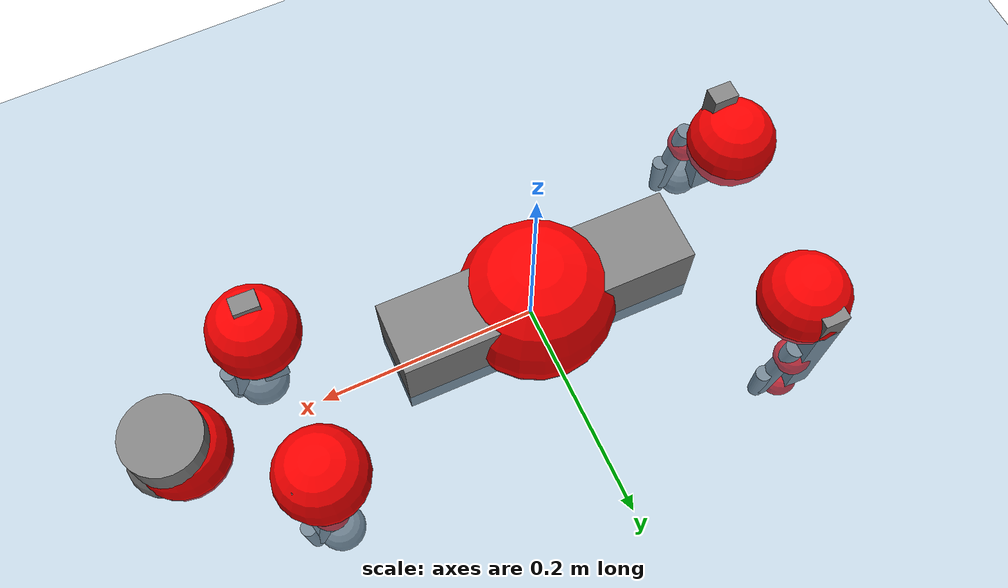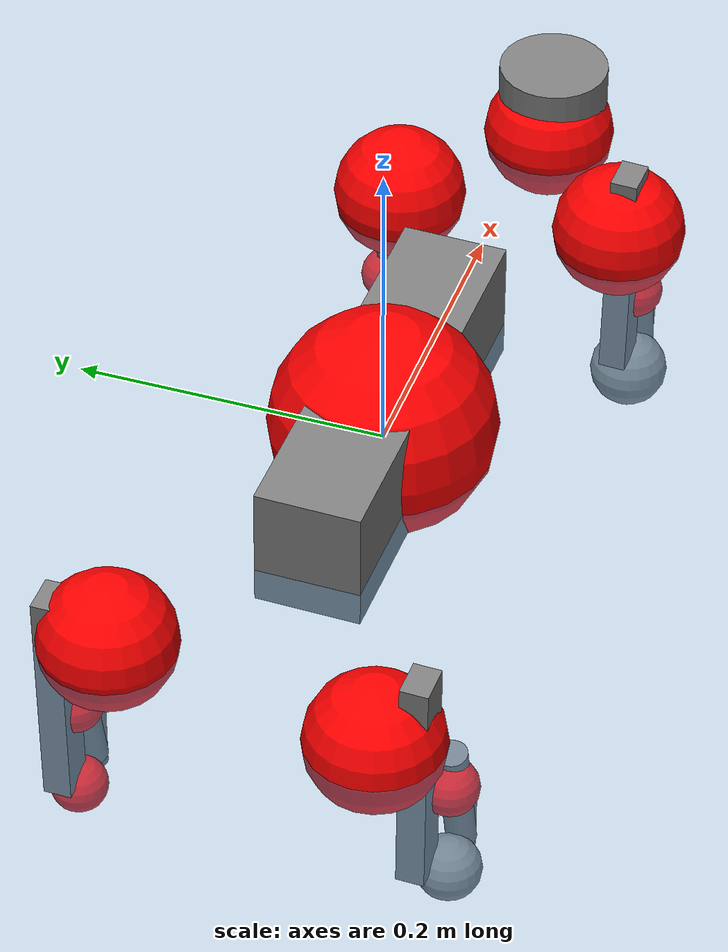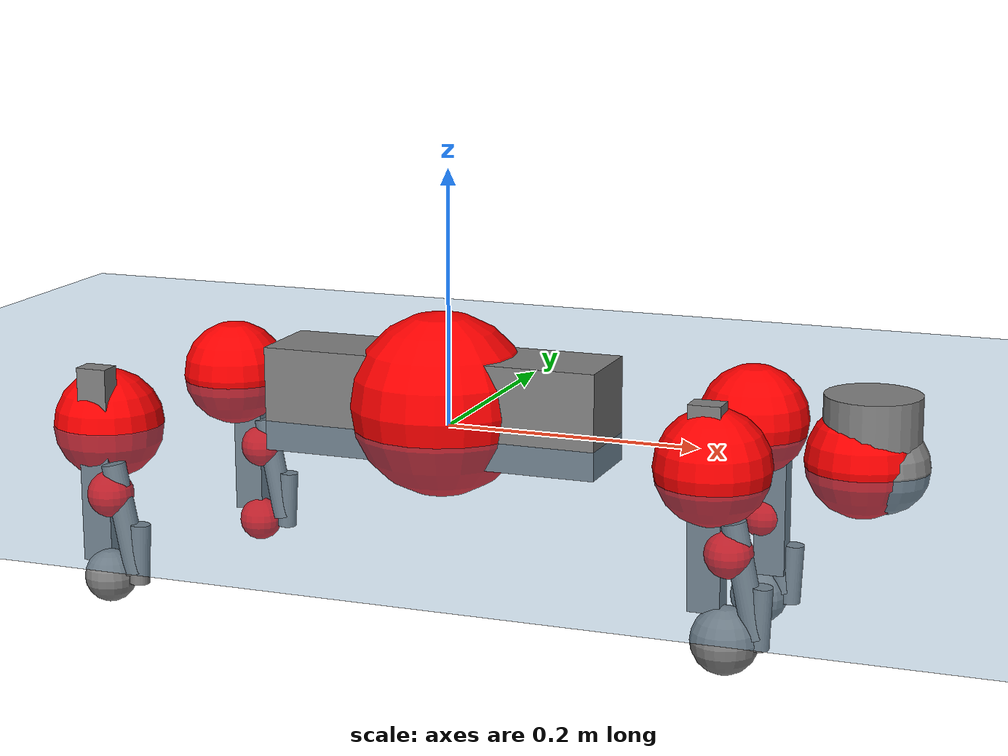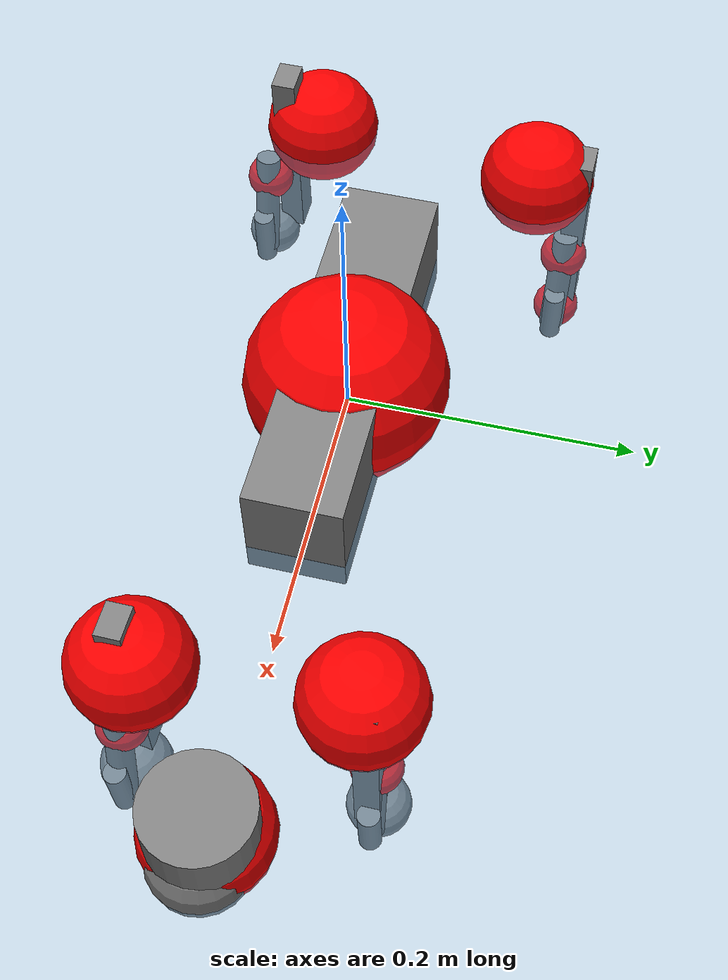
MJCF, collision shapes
<mujoco model="go2">
  <compiler angle="radian" assetdir="assets" balanceinertia="true" inertiafromgeom="false"/>

  <option timestep="0.005" density="1.2" viscosity="2e-05"/>

  <size nkey="1"/>

  <visual>
    <quality shadowsize="8192"/>
    <map shadowclip="0.5"/>
  </visual>

  <default>
    <default class="/">
      <geom contype="0" conaffinity="0" group="1" solref="-1000 -80"/>
      <site size="0.01 0.005 0.005" group="5"/>
      <general forcelimited="true" biastype="affine" gainprm="20" biasprm="0 -20 -0.5"/>
      <default class="go2">
        <joint armature="0.01" damping="0.01" frictionloss="0.2"/>
        <geom condim="1" margin="0.001"/>
        <default class="visual">
          <geom type="mesh" group="2"/>
        </default>
        <default class="collision">
          <geom group="3"/>
          <default class="foot">
            <geom size="0.022 0 0" condim="6" priority="1" friction="0.8 0.02 0.01" solimp="0.015 1 0.022"/>
          </default>
        </default>
        <default class="reward_collision_sphere">
          <geom group="5" rgba="1 0 0 1"/>
        </default>
      </default>
    </default>
  </default>

  <asset>
    <texture type="skybox" colorspace="auto" name="//unnamed_texture_0" builtin="gradient" rgb1="0.95 0.95 0.95" rgb2="0.95 0.95 0.95" width="100" height="600"/>
    <texture type="2d" colorspace="auto" name="texplane" builtin="checker" rgb1="0.345 0.575 0.748" rgb2="0.345 0.575 0.748" markrgb="1 1 1" width="512" height="512"/>
    <material name="MatPlane" class="/" texture="texplane" texuniform="true" texrepeat="2 2" specular="0.9"/>
    <material name="metal" class="/" rgba="0.9 0.95 0.95 1"/>
    <material name="black" class="/" rgba="0 0 0 1"/>
    <material name="white" class="/"/>
    <material name="gray" class="/" rgba="0.671705 0.692426 0.77427 1"/>
    <mesh name="base_0" class="/" file="base_0.obj"/>
    <mesh name="base_1" class="/" file="base_1.obj"/>
    <mesh name="base_2" class="/" file="base_2.obj"/>
    <mesh name="base_3" class="/" file="base_3.obj"/>
    <mesh name="base_4" class="/" file="base_4.obj"/>
    <mesh name="hip_0" class="/" file="hip_0.obj"/>
    <mesh name="hip_1" class="/" file="hip_1.obj"/>
    <mesh name="thigh_0" class="/" file="thigh_0.obj"/>
    <mesh name="thigh_1" class="/" file="thigh_1.obj"/>
    <mesh name="thigh_mirror_0" class="/" file="thigh_mirror_0.obj"/>
    <mesh name="thigh_mirror_1" class="/" file="thigh_mirror_1.obj"/>
    <mesh name="calf_0" class="/" file="calf_0.obj"/>
    <mesh name="calf_1" class="/" file="calf_1.obj"/>
    <mesh name="calf_mirror_0" class="/" file="calf_mirror_0.obj"/>
    <mesh name="calf_mirror_1" class="/" file="calf_mirror_1.obj"/>
    <mesh name="foot" class="/" file="foot.obj"/>
  </asset>

  <worldbody>
    <geom name="floor" class="/" size="100 100 0.125" type="plane" group="0" material="MatPlane"/>
    <light name="toplight_shadow" class="/" pos="0 0 5" dir="0.0990148 0.0990148 -0.990148" type="directional" ambient="0.04 0.04 0.04" diffuse="0.55 0.55 0.55" specular="0.12 0.12 0.12"/>
    <light name="toplight_fill" class="/" pos="0 0 5" dir="0.0990148 0.0990148 -0.990148" type="directional" castshadow="false" ambient="0.04 0.04 0.04" diffuse="0.3 0.3 0.3" specular="0.08 0.08 0.08"/>
    <body name="trunk" childclass="go2" pos="-0.00522761 -0.00178806 0.0176425" quat="0.999965 0.00364649 -0.00173006 -0.00726474">
      <inertial pos="0.0204984 -0.0147802 0.00252471" quat="-0.0614089 0.718403 -0.0542955 0.69078" mass="2.31598" diaginertia="0.199831 0.0111776 4.80411e-05"/>
      <joint name="//unnamed_joint_0" type="free" armature="0" damping="0" frictionloss="0"/>
      <geom name="//unnamed_geom_1" class="visual" material="black" mesh="base_0"/>
      <geom name="//unnamed_geom_2" class="visual" material="black" mesh="base_1"/>
      <geom name="//unnamed_geom_3" class="visual" material="black" mesh="base_2"/>
      <geom name="//unnamed_geom_4" class="visual" material="white" mesh="base_3"/>
      <geom name="//unnamed_geom_5" class="visual" material="gray" mesh="base_4"/>
      <geom name="trunk_1" class="collision" size="0.135203 0.0336032 0.0409707" type="box"/>
      <geom name="trunk_2" class="collision" size="0.0359392 0.0323453" pos="0.336055 0 0.00305557" type="cylinder"/>
      <geom name="trunk_3" class="collision" size="0.0337829" pos="0.345488 0 -0.0183334"/>
      <geom name="//unnamed_geom_9" class="reward_collision_sphere" size="0.0718785"/>
      <geom name="//unnamed_geom_10" class="reward_collision_sphere" size="0.0431271" pos="0.330159 0 -0.0137501"/>
      <site name="imu" pos="-0.0619619 -0.0584576 0.0839508" size="0.00718785"/>
      <camera name="track" pos="0 -1.34332 0" quat="0.707107 0.707107 0 0" mode="trackcom"/>
      <camera name="ego_camera" pos="0.367891 0 0.0137501" quat="-0.5 -0.5 0.5 0.5"/>
      <body name="FL_hip" pos="0.229535 0.0225867 -0.00933298" quat="0.999998 0.00170879 0.000129915 0.000784131">
        <inertial pos="0.00971884 -8.1903e-05 0.0171515" quat="0.482076 0.498467 0.569454 0.441424" mass="0.290445" diaginertia="0.00191369 0.000102369 1.46295e-06"/>
        <joint name="FL_hip_joint" pos="0 0 0" axis="0.997033 0.0469116 -0.0610283" stiffness="0.06759" range="-1.00419 0.824988" armature="0.00732694" damping="0.0763605" frictionloss="0.0644913"/>
        <geom name="//unnamed_geom_11" class="visual" material="metal" mesh="hip_0"/>
        <geom name="//unnamed_geom_12" class="visual" material="gray" mesh="hip_1"/>
        <geom name="//unnamed_geom_13" class="collision" size="0.0330641 0.0143757" pos="0 0.0537327 0" quat="0.707107 0.707107 0 0" type="cylinder"/>
        <geom name="//unnamed_geom_14" class="reward_collision_sphere" size="0.0431271" pos="0 0.0470161 0"/>
        <body name="FL_thigh" pos="0.0145247 0.0541782 -0.0140178" quat="1 -0.000406115 -0.00072771 -0.000351665">
          <inertial pos="-0.00341416 -0.0169688 -0.00618318" quat="0.840844 0.113147 -0.0352014 0.528148" mass="0.465987" diaginertia="0.0148575 0.000958457 3.3038e-06"/>
          <joint name="FL_thigh_joint" pos="0 0 0" axis="0.0054478 0.999973 -0.00482925" stiffness="0.0078826" range="-1.34429 3.50178" armature="0.0113535" damping="0" frictionloss="0.140071"/>
          <geom name="//unnamed_geom_15" class="visual" material="metal" mesh="thigh_0"/>
          <geom name="//unnamed_geom_16" class="visual" material="gray" mesh="thigh_1"/>
          <geom name="//unnamed_geom_17" class="collision" size="0.0765506 0.00880512 0.0122193" pos="0 0 -0.0325419" quat="0.707107 0 0.707107 0" type="box"/>
          <body name="FL_calf" pos="-0.00746678 0.00244493 -0.0639201" quat="1 -0.000253412 1.03146e-05 -0.000111346">
            <inertial pos="0.0262277 0.0165399 -0.0438092" quat="0.705457 0.0170717 0.000569818 0.708547" mass="0.0908472" diaginertia="0.00425824 0.00019602 1.50746e-07"/>
            <joint name="FL_calf_joint" pos="0 0 0" axis="-0.0131581 0.999786 0.0159353" stiffness="0.00189975" range="-2.35174 -1.07141" armature="0.0105437" damping="0.0407497" frictionloss="0.0140839"/>
            <geom name="//unnamed_geom_18" class="visual" material="gray" mesh="calf_0"/>
            <geom name="//unnamed_geom_19" class="visual" material="black" mesh="calf_1"/>
            <geom name="FL_calf0" class="collision" size="0.00862542 0.0431271" pos="0.00943311 0 -0.0183334" quat="0.994493 0 -0.104807 0" type="cylinder"/>
            <geom name="//unnamed_geom_21" class="collision" size="0.00790663 0.0233605" pos="0.0235828 0 -0.0452225" quat="0.999688 0 0.0249974 0" type="cylinder"/>
            <geom name="//unnamed_geom_22" class="visual" pos="0 0 -0.0650837" quat="1 0 0 0" material="black" mesh="foot"/>
            <geom name="FL_foot" class="foot" size="0.0226288" pos="-0.00235828 0 -0.0650837"/>
            <geom name="//unnamed_geom_24" class="reward_collision_sphere" size="0.0179696"/>
            <geom name="//unnamed_geom_25" class="reward_collision_sphere" size="0.0179696" pos="-0.00235828 0 -0.0650837"/>
            <site name="FL_foot" class="foot" pos="-0.00235828 0 -0.0650837" size="0.00718785"/>
          </body>
        </body>
      </body>
      <body name="FR_hip" pos="0.239434 -0.0298131 -0.00746316" quat="0.999959 0.00792031 -0.000810037 -0.00425883">
        <inertial pos="0.00294181 -0.0024061 0.0021404" quat="0.464323 0.570767 0.449553 0.506489" mass="0.215544" diaginertia="0.00205106 9.29103e-05 1.31255e-06"/>
        <joint name="FR_hip_joint" pos="0 0 0" axis="0.998423 0.055374 0.00926984" stiffness="0.0747648" range="-0.696785 1.26793" armature="0.00490286" damping="0.0703135" frictionloss="0.0541538"/>
        <geom name="//unnamed_geom_26" class="visual" pos="0 3.18932e-09 1.36797e-07" quat="4.63268e-05 1 0 0" material="metal" mesh="hip_0"/>
        <geom name="//unnamed_geom_27" class="visual" pos="0 5.17027e-09 -3.3835e-07" quat="4.63268e-05 1 0 0" material="gray" mesh="hip_1"/>
        <geom name="//unnamed_geom_28" class="collision" size="0.0330641 0.0143757" pos="0 -0.0537327 0" quat="0.707107 0.707107 0 0" type="cylinder"/>
        <geom name="//unnamed_geom_29" class="reward_collision_sphere" size="0.0431271" pos="0 -0.0470161 0"/>
        <body name="FR_thigh" pos="-0.00248415 -0.0524185 0.00406027" quat="0.999987 -2.9033e-05 -0.00380812 -0.00326123">
          <inertial pos="0.00602146 0.0125642 -0.00161238" quat="0.559314 -0.0159189 0.0469736 0.827471" mass="0.356074" diaginertia="0.0131176 0.000953111 2.06974e-06"/>
          <joint name="FR_thigh_joint" pos="0 0 0" axis="0.000107074 -1 0.00017421" range="-3.48569 1.80163" armature="0.0112737" damping="0.0949643" frictionloss="0.246808"/>
          <geom name="//unnamed_geom_30" class="visual" material="metal" mesh="thigh_mirror_0"/>
          <geom name="//unnamed_geom_31" class="visual" material="gray" mesh="thigh_mirror_1"/>
          <geom name="//unnamed_geom_32" class="collision" size="0.0765506 0.00880512 0.0122193" pos="0 0 -0.0325419" quat="0.707107 0 0.707107 0" type="box"/>
          <body name="FR_calf" pos="0.0173631 -0.00422383 -0.0639792" quat="0.999994 0.000563068 0.00289099 0.00153833">
            <inertial pos="0.0148695 0.0167002 -0.0576137" quat="0.679614 -0.0191295 0.0871695 0.728121" mass="0.11587" diaginertia="0.00429393 0.000193947 1.96798e-07"/>
            <joint name="FR_calf_joint" pos="0 0 0" axis="-0.000249171 -1 -0.000189462" stiffness="0.0342309" range="0.900039 2.8268" armature="0.00858821" damping="0.069326" frictionloss="0.21973"/>
            <geom name="//unnamed_geom_33" class="visual" material="gray" mesh="calf_mirror_0"/>
            <geom name="//unnamed_geom_34" class="visual" material="black" mesh="calf_mirror_1"/>
            <geom name="FR_calf0" class="collision" size="0.0093442 0.0431271" pos="0.0117914 0 -0.0183334" quat="0.995004 0 -0.0998334 0" type="cylinder"/>
            <geom name="//unnamed_geom_36" class="collision" size="0.00790663 0.0233605" pos="0.0235828 0 -0.0452225" quat="0.999688 0 0.0249974 0" type="cylinder"/>
            <geom name="//unnamed_geom_37" class="visual" pos="0 0 -0.0650837" quat="1 0 0 0" material="black" mesh="foot"/>
            <geom name="FR_foot" class="foot" size="0.0253182" pos="-0.00235828 0 -0.0650837"/>
            <geom name="//unnamed_geom_39" class="reward_collision_sphere" size="0.0179696"/>
            <geom name="//unnamed_geom_40" class="reward_collision_sphere" size="0.0179696" pos="-0.00235828 0 -0.0650837"/>
            <site name="FR_foot" class="foot" pos="-0.00235828 0 -0.0650837" size="0.00718785"/>
          </body>
        </body>
      </body>
      <body name="RL_hip" pos="-0.225288 0.0441638 -0.0131811" quat="0.999992 -0.000231917 -0.0030434 0.00274238">
        <inertial pos="0.014528 0.0174 0.017685" quat="0.513891 0.525044 0.45986 0.498773" mass="0.306019" diaginertia="0.0026106 8.23224e-05 1.72169e-06"/>
        <joint name="RL_hip_joint" pos="0 0 0" axis="-0.997021 -0.0761932 -0.0120249" range="-0.736247 0.719416" armature="0.00182512" damping="0" frictionloss="0.15292"/>
        <geom name="//unnamed_geom_41" class="visual" pos="-7.61028e-09 0 -1.49179e-06" quat="4.63268e-05 0 1 0" material="metal" mesh="hip_0"/>
        <geom name="//unnamed_geom_42" class="visual" pos="-1.23372e-08 0 -1.32301e-06" quat="4.63268e-05 0 1 0" material="gray" mesh="hip_1"/>
        <geom name="//unnamed_geom_43" class="collision" size="0.0330641 0.0143757" pos="0 0.0537327 0" quat="0.707107 0.707107 0 0" type="cylinder"/>
        <geom name="//unnamed_geom_44" class="reward_collision_sphere" size="0.0431271" pos="0 0.0470161 0"/>
        <body name="RL_thigh" pos="-0.00273959 0.0795417 -0.0172773" quat="0.999977 -0.00649352 0.000104529 -0.00188488">
          <inertial pos="-0.0228217 -0.00143237 0.00825608" quat="0.828604 0.0834175 -0.0192438 0.55325" mass="0.341558" diaginertia="0.00820253 0.000567582 1.4977e-06"/>
          <joint name="RL_thigh_joint" pos="0 0 0" axis="0.0658063 0.995827 0.0632311" range="-0.275609 4.46335" armature="0.00511619" damping="0.0983615" frictionloss="0.0711542"/>
          <geom name="//unnamed_geom_45" class="visual" material="metal" mesh="thigh_0"/>
          <geom name="//unnamed_geom_46" class="visual" material="gray" mesh="thigh_1"/>
          <geom name="//unnamed_geom_47" class="collision" size="0.0765506 0.00880512 0.0122193" pos="0 0 -0.0325419" quat="0.707107 0 0.707107 0" type="box"/>
          <body name="RL_calf" pos="0.0119083 -0.00438463 -0.0528915" quat="0.999975 -0.00601424 0.00196854 -0.00327641">
            <inertial pos="0.0247122 -0.0134673 -0.0253058" quat="0.75097 -0.0424053 0.0262099 0.658452" mass="0.0997526" diaginertia="0.00391224 0.000264957 1.44898e-07"/>
            <joint name="RL_calf_joint" pos="0 0 0" axis="0.00336611 0.999957 -0.00864694" stiffness="0.0299598" range="-2.84226 -0.462538" armature="0.00179244" damping="0.0917752" frictionloss="0.153166"/>
            <geom name="//unnamed_geom_48" class="visual" material="gray" mesh="calf_0"/>
            <geom name="//unnamed_geom_49" class="visual" material="black" mesh="calf_1"/>
            <geom name="RL_calf0" class="collision" size="0.0093442 0.0431271" pos="0.0117914 0 -0.0183334" quat="0.995004 0 -0.0998334 0" type="cylinder"/>
            <geom name="//unnamed_geom_51" class="collision" size="0.00790663 0.0233605" pos="0.0235828 0 -0.0452225" quat="0.999688 0 0.0249974 0" type="cylinder"/>
            <geom name="//unnamed_geom_52" class="visual" pos="0 0 -0.0650837" quat="1 0 0 0" material="black" mesh="foot"/>
            <geom name="RL_foot" class="foot" size="0.0104086" pos="-0.00235828 0 -0.0650837"/>
            <geom name="//unnamed_geom_54" class="reward_collision_sphere" size="0.0179696"/>
            <geom name="//unnamed_geom_55" class="reward_collision_sphere" size="0.0179696" pos="-0.00235828 0 -0.0650837"/>
            <site name="RL_foot" class="foot" pos="-0.00235828 0 -0.0650837" size="0.00718785"/>
          </body>
        </body>
      </body>
      <body name="RR_hip" pos="-0.246647 -0.0356303 -0.0178548" quat="1 0.000106407 0.00021985 0.000148537">
        <inertial pos="0.0209648 0.0105919 0.000167426" quat="0.474213 0.560784 0.453613 0.504855" mass="0.24254" diaginertia="0.00123823 6.12517e-05 8.58539e-07"/>
        <joint name="RR_hip_joint" pos="0 0 0" axis="-0.995612 0.0659085 0.0664342" range="-0.842247 1.01563" armature="0.00729267" damping="0.0119449" frictionloss="0.0106814"/>
        <geom name="//unnamed_geom_56" class="visual" pos="7.59271e-09 3.18932e-09 -1.62859e-06" quat="2.14617e-09 4.63268e-05 4.63268e-05 -1" material="metal" mesh="hip_0"/>
        <geom name="//unnamed_geom_57" class="visual" pos="1.23806e-08 5.17027e-09 -9.84656e-07" quat="2.14617e-09 4.63268e-05 4.63268e-05 -1" material="gray" mesh="hip_1"/>
        <geom name="//unnamed_geom_58" class="collision" size="0.0330641 0.0143757" pos="0 -0.0537327 0" quat="0.707107 0.707107 0 0" type="cylinder"/>
        <geom name="//unnamed_geom_59" class="reward_collision_sphere" size="0.0431271" pos="0 -0.0470161 0"/>
        <body name="RR_thigh" pos="0.00510459 -0.0721894 0.00710609" quat="0.999997 0.00150855 0.00132292 -0.00167559">
          <inertial pos="-0.0141151 0.0260532 0.00594949" quat="0.575689 -0.0312066 0.0288224 0.816565" mass="0.579068" diaginertia="0.0120775 0.000904543 2.35278e-06"/>
          <joint name="RR_thigh_joint" pos="0 0 0" axis="-0.0461617 -0.998774 -0.017897" range="-4.5798 0.805623" armature="0.00712186" damping="0.0460531" frictionloss="0.197811"/>
          <geom name="//unnamed_geom_60" class="visual" material="metal" mesh="thigh_mirror_0"/>
          <geom name="//unnamed_geom_61" class="visual" material="gray" mesh="thigh_mirror_1"/>
          <geom name="//unnamed_geom_62" class="collision" size="0.0765506 0.00880512 0.0122193" pos="0 0 -0.0325419" quat="0.707107 0 0.707107 0" type="box"/>
          <body name="RR_calf" pos="0.0167521 -0.0139273 -0.0514926" quat="0.999956 -0.00836732 -0.00408294 -0.00128216">
            <inertial pos="-0.000930996 0.000975236 -0.0445009" quat="0.698385 -0.0197161 0.0815862 0.710783" mass="0.0823317" diaginertia="0.00310047 0.000146682 1.45457e-07"/>
            <joint name="RR_calf_joint" pos="0 0 0" axis="-0.00703203 -0.995894 -0.0902555" stiffness="0.0837356" range="0.527212 2.86944" armature="0.00646523" damping="0.0881092" frictionloss="0.198881"/>
            <geom name="//unnamed_geom_63" class="visual" material="gray" mesh="calf_mirror_0"/>
            <geom name="//unnamed_geom_64" class="visual" material="black" mesh="calf_mirror_1"/>
            <geom name="RR_calf0" class="collision" size="0.0093442 0.0431271" pos="0.0117914 0 -0.0183334" quat="0.995004 0 -0.0998334 0" type="cylinder"/>
            <geom name="//unnamed_geom_66" class="collision" size="0.00790663 0.0233605" pos="0.0235828 0 -0.0452225" quat="0.999688 0 0.0249974 0" type="cylinder"/>
            <geom name="//unnamed_geom_67" class="visual" pos="0 0 -0.0650837" quat="1 0 0 0" material="black" mesh="foot"/>
            <geom name="RR_foot" class="foot" size="0.020311" pos="-0.00235828 0 -0.0650837"/>
            <geom name="//unnamed_geom_69" class="reward_collision_sphere" size="0.0179696"/>
            <geom name="//unnamed_geom_70" class="reward_collision_sphere" size="0.0179696" pos="-0.00235828 0 -0.0650837"/>
            <site name="RR_foot" class="foot" pos="-0.00235828 0 -0.0650837" size="0.00718785"/>
          </body>
        </body>
      </body>
    </body>
  </worldbody>

  <contact>
    <pair class="/" geom1="floor" geom2="FL_foot" name="//unnamed_contact_0"/>
    <pair class="/" geom1="floor" geom2="FR_foot" name="//unnamed_contact_1"/>
    <pair class="/" geom1="floor" geom2="RL_foot" name="//unnamed_contact_2"/>
    <pair class="/" geom1="floor" geom2="RR_foot" name="//unnamed_contact_3"/>
  </contact>

  <actuator>
    <general name="FL_hip" class="/" joint="FL_hip_joint" forcerange="-18.6928 18.6928" gainprm="12.041" biasprm="0 -12.041 -0.428007"/>
    <general name="FL_thigh" class="/" joint="FL_thigh_joint" forcerange="-13.0664 13.0664" gainprm="12.041" biasprm="0 -12.041 -0.428007"/>
    <general name="FL_calf" class="/" joint="FL_calf_joint" forcerange="-18.5726 18.5726" gainprm="12.041" biasprm="0 -12.041 -0.428007"/>
    <general name="FR_hip" class="/" joint="FR_hip_joint" forcerange="-20.8049 20.8049" gainprm="12.041" biasprm="0 -12.041 -0.428007"/>
    <general name="FR_thigh" class="/" joint="FR_thigh_joint" forcerange="-9.88316 9.88316" gainprm="12.041" biasprm="0 -12.041 -0.428007"/>
    <general name="FR_calf" class="/" joint="FR_calf_joint" forcerange="-35.2351 35.2351" gainprm="12.041" biasprm="0 -12.041 -0.428007"/>
    <general name="RL_hip" class="/" joint="RL_hip_joint" forcerange="-19.0089 19.0089" gainprm="12.041" biasprm="0 -12.041 -0.428007"/>
    <general name="RL_thigh" class="/" joint="RL_thigh_joint" forcerange="-28.2126 28.2126" gainprm="12.041" biasprm="0 -12.041 -0.428007"/>
    <general name="RL_calf" class="/" joint="RL_calf_joint" forcerange="-12.9278 12.9278" gainprm="12.041" biasprm="0 -12.041 -0.428007"/>
    <general name="RR_hip" class="/" joint="RR_hip_joint" forcerange="-16.3957 16.3957" gainprm="12.041" biasprm="0 -12.041 -0.428007"/>
    <general name="RR_thigh" class="/" joint="RR_thigh_joint" forcerange="-22.6338 22.6338" gainprm="12.041" biasprm="0 -12.041 -0.428007"/>
    <general name="RR_calf" class="/" joint="RR_calf_joint" forcerange="-18.069 18.069" gainprm="12.041" biasprm="0 -12.041 -0.428007"/>
  </actuator>

  <sensor>
    <gyro site="imu" name="imu_angular_velocity"/>
    <velocimeter site="imu" name="imu_linear_velocity"/>
    <framelinvel objtype="site" objname="FL_foot" name="FL_foot_global_linear_velocity"/>
    <framelinvel objtype="site" objname="FR_foot" name="FR_foot_global_linear_velocity"/>
    <framelinvel objtype="site" objname="RL_foot" name="RL_foot_global_linear_velocity"/>
    <framelinvel objtype="site" objname="RR_foot" name="RR_foot_global_linear_velocity"/>
  </sensor>

  <keyframe>
    <key name="home" qpos="0 0 0.325 1 0 0 0 0.1 0.8 -1.5 -0.1 -0.8 1.5 -0.1 0.8 -1.5 0.1 -0.8 1.5"/>
  </keyframe>
</mujoco>
